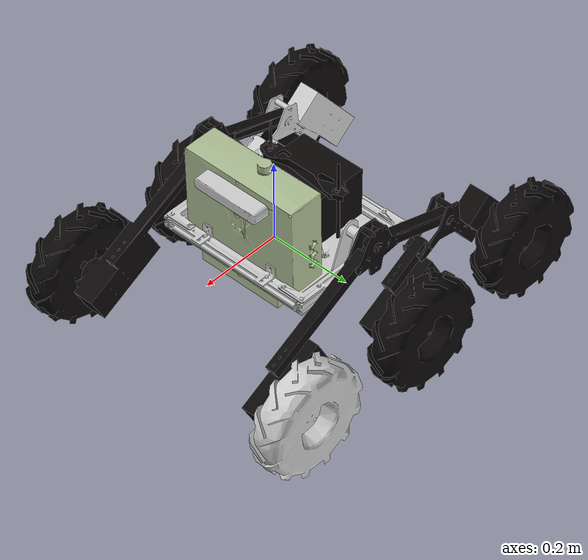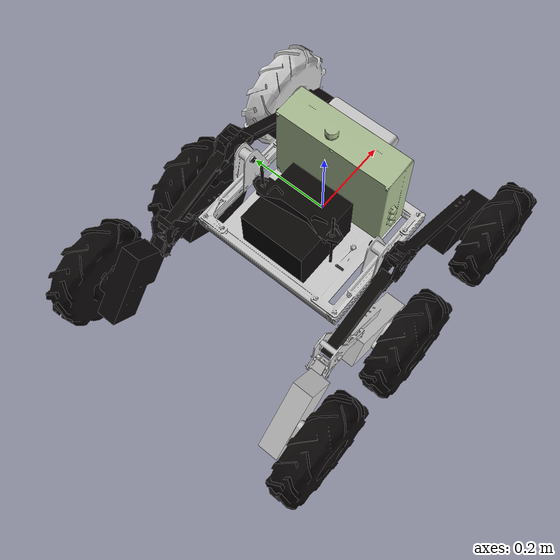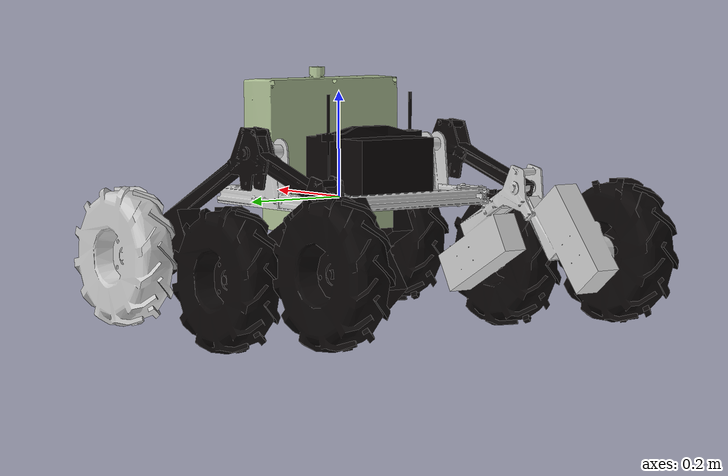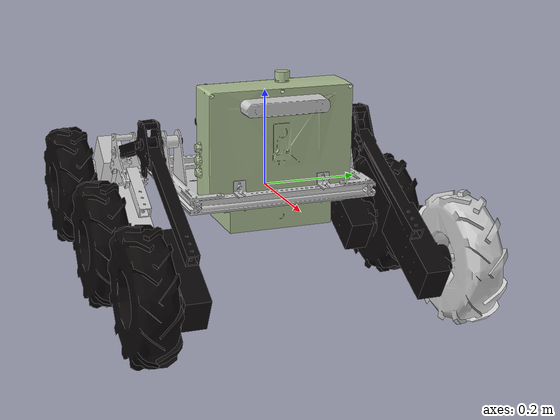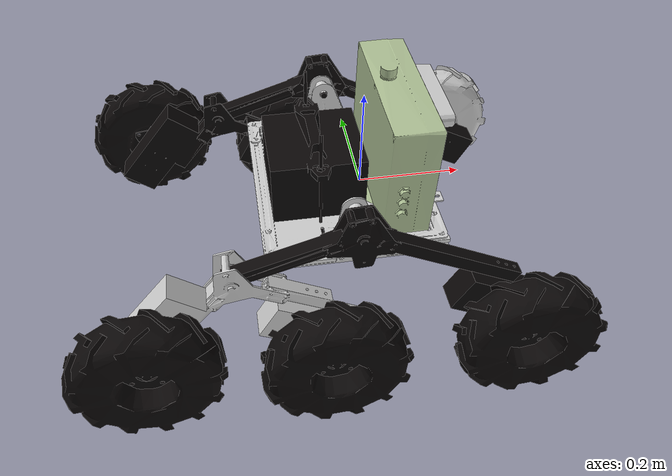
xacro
<?xml version="1.0"?>
<!-- Basic differential drive mobile base -->
<robot xmlns:xacro="http://www.ros.org/wiki/xacro" name="bodenbot">
  <xacro:arg name="prefix" default="" />
  <xacro:arg name="use_mock_hardware" default="true" />
  <xacro:arg name="debug" default="true" />

  <xacro:include filename="$(find bodenbot)/urdf/bodenbot_description.urdf.xacro" />

  <!-- Import Rviz colors -->
  <xacro:include filename="$(find bodenbot)/urdf/bodenbot.materials.xacro" />

  <!-- Import ros2_control description -->
  <xacro:include filename="$(find bodenbot)/ros2_control/bodenbot.ros2_control.xacro" />

  <xacro:bodenbot prefix="$(arg prefix)" />

  <xacro:bodenbot_ros2_control name="bodenbot"
    prefix="$(arg prefix)"
    debug="$(arg debug)"
    use_mock_hardware="$(arg use_mock_hardware)"
    />
</robot>

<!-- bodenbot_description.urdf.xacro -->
<robot xmlns:xacro="http://www.ros.org/wiki/xacro">
<xacro:macro name="bodenbot" params="prefix">
  <joint name="Zed2i_link_joint" type="fixed">
    <origin rpy="0.00000 0.00682 3.14159" xyz="-0.08420 0.00894 0.08299"/>
    <parent link="electronics_link"/>
    <child link="Zed2i_link"/>
  </joint>
  <joint name="base_link_joint" type="fixed">
    <origin rpy="0.00000 0.00000 0.00000" xyz="0.00000 0.00000 -0.23899"/>
    <parent link="main_plate_link"/>
    <child link="base_link"/>
  </joint>
  <joint name="battery_link_joint" type="fixed">
    <origin rpy="0.00000 0.00000 -3.14159" xyz="-0.09286 -0.00214 0.05627"/>
    <parent link="main_plate_link"/>
    <child link="battery_link"/>
  </joint>
  <joint name="electronics_link_joint" type="fixed">
    <origin rpy="0.00000 0.00000 -3.14159" xyz="0.04514 0.00299 0.10698"/>
    <parent link="main_plate_link"/>
    <child link="electronics_link"/>
  </joint>
  <joint name="left_wheel_1_link_joint" type="continuous">
    <limit lower="0.00000" upper="0.00000" effort="1000.00000" velocity="10.00000"/>
    <origin rpy="0.00000 -0.00000 2.05076" xyz="-0.29512 -0.20932 0.09071"/>
    <parent link="suspension_left_main_link"/>
    <child link="left_wheel_1_link"/>
    <axis xyz="0.00000 0.00000 1.00000"/>
  </joint>
  <joint name="left_wheel_2_link_joint" type="continuous">
    <limit lower="0.00000" upper="0.00000" effort="1000.00000" velocity="10.00000"/>
    <origin rpy="0.00000 0.00000 2.34661" xyz="-0.12032 -0.18908 0.02638"/>
    <parent link="suspension_left_sub_link"/>
    <child link="left_wheel_2_link"/>
    <axis xyz="0.00000 0.00000 1.00000"/>
  </joint>
  <joint name="left_wheel_3_link_joint" type="continuous">
    <limit lower="0.00000" upper="0.00000" effort="1000.00000" velocity="10.00000"/>
    <origin rpy="0.00000 0.00000 0.26966" xyz="0.17866 -0.06537 0.02638"/>
    <parent link="suspension_left_sub_link"/>
    <child link="left_wheel_3_link"/>
    <axis xyz="0.00000 0.00000 1.00000"/>
  </joint>
  <joint name="right_wheel_1_link_joint" type="continuous">
    <limit lower="0.00000" upper="0.00000" effort="1000.00000" velocity="10.00000"/>
    <origin rpy="-0.00000 0.00000 -2.34661" xyz="0.12032 -0.18908 0.02638"/>
    <parent link="suspension_right_sub_link"/>
    <child link="right_wheel_1_link"/>
    <axis xyz="0.00000 0.00000 -1.00000"/>
  </joint>
  <joint name="right_wheel_2_link_joint" type="continuous">
    <limit lower="0.00000" upper="0.00000" effort="1000.00000" velocity="10.00000"/>
    <origin rpy="0.00000 -0.00000 2.19125" xyz="-0.17866 -0.06537 0.02638"/>
    <parent link="suspension_right_sub_link"/>
    <child link="right_wheel_2_link"/>
    <axis xyz="0.00000 0.00000 -1.00000"/>
  </joint>
  <joint name="right_wheel_3_link_joint" type="continuous">
    <limit lower="0.00000" upper="0.00000" effort="1000.00000" velocity="10.00000"/>
    <origin rpy="-0.00000 0.00000 -2.05076" xyz="0.29512 -0.20932 0.09071"/>
    <parent link="suspension_right_main_link"/>
    <child link="right_wheel_3_link"/>
    <axis xyz="0.00000 0.00000 -1.00000"/>
  </joint>
  <joint name="sensor_package_link_joint" type="fixed">
    <origin rpy="-3.14159 0.00000 -3.14159" xyz="0.03892 0.00022 -0.02071"/>
    <parent link="main_plate_link"/>
    <child link="sensor_package_link"/>
  </joint>
  <joint name="suspension_left_main_link_joint" type="revolute">
    <limit lower="-0.50000" upper="0.50000" effort="1.50000" velocity="0.01500"/>
    <mimic multiplier="-1.00000" offset="0.00000" joint="suspension_right_main_link_joint"/>
    <origin rpy="1.57080 0.00000 -3.14159" xyz="-0.04578 0.16295 0.09549"/>
    <parent link="main_plate_link"/>
    <child link="suspension_left_main_link"/>
    <axis xyz="0.00000 0.00000 1.00000"/>
  </joint>
  <joint name="suspension_left_sub_link_joint" type="revolute">
    <limit lower="-0.50000" upper="0.50000" effort="5.00000" velocity="0.01500"/>
    <origin rpy="-0.00000 0.00000 -0.26966" xyz="0.22047 -0.07218 0.06434"/>
    <parent link="suspension_left_main_link"/>
    <child link="suspension_left_sub_link"/>
    <axis xyz="0.00000 0.00000 1.00000"/>
  </joint>
  <joint name="suspension_right_main_link_joint" type="revolute">
    <limit lower="-0.50000" upper="0.50000" effort="1.50000" velocity="0.01500"/>
    <origin rpy="1.57080 -0.00000 -0.00000" xyz="-0.04587 -0.16724 0.09582"/>
    <parent link="main_plate_link"/>
    <child link="suspension_right_main_link"/>
    <axis xyz="0.00000 0.00000 1.00000"/>
  </joint>
  <joint name="suspension_right_sub_link_joint" type="revolute">
    <limit lower="-0.50000" upper="0.50000" effort="5.00000" velocity="0.01500"/>
    <origin rpy="-0.00000 0.00000 0.26966" xyz="-0.22047 -0.07218 0.06434"/>
    <parent link="suspension_right_main_link"/>
    <child link="suspension_right_sub_link"/>
    <axis xyz="0.00000 0.00000 1.00000"/>
  </joint>
  <link name="Zed2i_link">
    <inertial>
      <inertia ixx="0.00048" ixy="0.00000" ixz="0.00000" iyy="0.00004" iyz="0.00000" izz="0.00050"/>
      <origin rpy="0.00000 0.00000 0.00000" xyz="0.00378 0.00106 -0.00564"/>
      <mass value="0.20000"/>
    </inertial>
    <visual name="Zed2i_visual">
      <origin rpy="1.57080 -0.00000 3.14159" xyz="-0.00000 -0.00000 -0.00000"/>
      <material name="Glass"/>
      <geometry>
        <mesh filename="package://bodenbot/description/meshes/dae/Zed2i.dae" scale="1.00000 1.00000 1.00000"/>
      </geometry>
    </visual>
  </link>
  <link name="base_link">
    <inertial>
      <inertia ixx="0.00001" ixy="0.00000" ixz="0.00000" iyy="0.00001" iyz="0.00000" izz="0.00001"/>
      <origin rpy="0.00000 0.00000 0.00000" xyz="0.00000 0.00000 0.00000"/>
      <mass value="0.00001"/>
    </inertial>
  </link>
  <link name="battery_link">
    <inertial>
      <inertia ixx="0.04617" ixy="0.00000" ixz="0.00003" iyy="0.04395" iyz="0.00004" izz="0.03884"/>
      <origin rpy="0.00000 0.00000 0.00000" xyz="0.00000 0.00000 0.00144"/>
      <mass value="8.00000"/>
    </inertial>
    <visual name="battery_visual">
      <origin rpy="1.57080 0.00000 0.00000" xyz="0.00000 0.00000 0.00000"/>
      <material name="Rubber"/>
      <geometry>
        <mesh filename="package://bodenbot/description/meshes/dae/battery.dae" scale="1.00000 1.00000 1.00000"/>
      </geometry>
    </visual>
  </link>
  <link name="electronics_link">
    <inertial>
      <inertia ixx="0.00623" ixy="0.00010" ixz="0.00038" iyy="0.00308" iyz="-0.00011" izz="0.00450"/>
      <origin rpy="0.00000 0.00000 0.00000" xyz="-0.01192 0.00225 0.00595"/>
      <mass value="0.50000"/>
    </inertial>
    <visual name="electronics_visual">
      <origin rpy="1.57080 0.00000 0.00000" xyz="-0.00000 0.00000 0.00000"/>
      <material name="Plastic"/>
      <geometry>
        <mesh filename="package://bodenbot/description/meshes/dae/electronics.dae" scale="1.00000 1.00000 1.00000"/>
      </geometry>
    </visual>
  </link>
  <link name="left_wheel_1_link">
    <collision name="left_wheel_1_collision">
      <origin rpy="-0.00000 0.00000 0.00000" xyz="-0.00006 -0.00002 0.06622"/>
      <geometry>
        <cylinder radius="0.13329" length="0.10744"/>
      </geometry>
    </collision>
    <inertial>
      <inertia ixx="0.00162" ixy="0.00000" ixz="0.00000" iyy="0.00267" iyz="0.00000" izz="0.00162"/>
      <origin rpy="0.00000 0.00000 0.00000" xyz="-0.00006 -0.00002 0.06622"/>
      <mass value="0.30000"/>
    </inertial>
    <visual name="left_wheel_1_visual">
      <origin rpy="-0.00000 0.00000 0.00000" xyz="-0.00000 0.00000 0.00000"/>
      <material name="Metal"/>
      <geometry>
        <mesh filename="package://bodenbot/description/meshes/dae/wheel_left.dae" scale="1.00000 1.00000 1.00000"/>
      </geometry>
    </visual>
  </link>
  <link name="left_wheel_2_link">
    <collision name="left_wheel_2_collision">
      <origin rpy="0.00000 0.00000 0.00000" xyz="-0.00006 -0.00002 0.06622"/>
      <geometry>
        <cylinder radius="0.13329" length="0.10744"/>
      </geometry>
    </collision>
    <inertial>
      <inertia ixx="0.00162" ixy="0.00000" ixz="0.00000" iyy="0.00267" iyz="0.00000" izz="0.00162"/>
      <origin rpy="0.00000 0.00000 0.00000" xyz="-0.00006 -0.00002 0.06622"/>
      <mass value="0.30000"/>
    </inertial>
    <visual name="left_wheel_2_visual">
      <origin rpy="0.00000 0.00000 0.00000" xyz="0.00000 -0.00000 -0.00000"/>
      <material name="Rubber"/>
      <geometry>
        <mesh filename="package://bodenbot/description/meshes/dae/wheel_left.dae" scale="1.00000 1.00000 1.00000"/>
      </geometry>
    </visual>
  </link>
  <link name="left_wheel_3_link">
    <collision name="left_wheel_3_collision">
      <origin rpy="-3.14159 0.00000 0.00000" xyz="0.00004 0.00005 0.06622"/>
      <geometry>
        <cylinder radius="0.13329" length="0.10744"/>
      </geometry>
    </collision>
    <inertial>
      <inertia ixx="0.00162" ixy="0.00000" ixz="0.00000" iyy="0.00267" iyz="0.00000" izz="0.00162"/>
      <origin rpy="0.00000 0.00000 0.00000" xyz="0.00004 0.00005 0.06622"/>
      <mass value="0.30000"/>
    </inertial>
    <visual name="left_wheel_3_visual">
      <origin rpy="0.00000 0.00000 0.00000" xyz="0.00000 0.00000 -0.00000"/>
      <material name="Rubber"/>
      <geometry>
        <mesh filename="package://bodenbot/description/meshes/dae/wheel_left.dae" scale="1.00000 1.00000 1.00000"/>
      </geometry>
    </visual>
  </link>
  <link name="main_plate_link">
    <inertial>
      <inertia ixx="0.00100" ixy="0.00000" ixz="0.00000" iyy="0.00100" iyz="0.00000" izz="0.00100"/>
      <origin rpy="0.00000 0.00000 0.00000" xyz="-0.00150 -0.00214 -0.00904"/>
      <mass value="2.00000"/>
    </inertial>
    <visual name="main_plate_visual">
      <origin rpy="1.57080 0.00000 -3.14159" xyz="-0.04078 -0.00214 0.00674"/>
      <material name="Metal"/>
      <geometry>
        <mesh filename="package://bodenbot/description/meshes/dae/main_plate.dae" scale="1.00000 1.00000 1.00000"/>
      </geometry>
    </visual>
  </link>
  <link name="right_wheel_1_link">
    <collision name="right_wheel_1_collision">
      <origin rpy="-3.14159 -0.00000 0.00000" xyz="0.00006 -0.00002 0.06622"/>
      <geometry>
        <cylinder radius="0.13329" length="0.10744"/>
      </geometry>
    </collision>
    <inertial>
      <inertia ixx="0.00162" ixy="0.00000" ixz="0.00000" iyy="0.00267" iyz="0.00000" izz="0.00162"/>
      <origin rpy="0.00000 0.00000 0.00000" xyz="0.00006 -0.00002 0.06622"/>
      <mass value="0.30000"/>
    </inertial>
    <visual name="right_wheel_1_visual">
      <origin rpy="-3.14159 -0.00000 0.00000" xyz="-0.00000 -0.00000 -0.00000"/>
      <material name="Rubber"/>
      <geometry>
        <mesh filename="package://bodenbot/description/meshes/dae/wheel_right.dae" scale="1.00000 1.00000 1.00000"/>
      </geometry>
    </visual>
  </link>
  <link name="right_wheel_2_link">
    <collision name="right_wheel_2_collision">
      <origin rpy="3.14159 0.00000 0.00000" xyz="0.00006 -0.00002 0.06622"/>
      <geometry>
        <cylinder radius="0.13329" length="0.10744"/>
      </geometry>
    </collision>
    <inertial>
      <inertia ixx="0.00162" ixy="0.00000" ixz="0.00000" iyy="0.00267" iyz="0.00000" izz="0.00162"/>
      <origin rpy="0.00000 0.00000 0.00000" xyz="0.00006 -0.00002 0.06622"/>
      <mass value="0.30000"/>
    </inertial>
    <visual name="right_wheel_2_visual">
      <origin rpy="3.14159 0.00000 0.00000" xyz="0.00000 0.00000 -0.00000"/>
      <material name="Rubber"/>
      <geometry>
        <mesh filename="package://bodenbot/description/meshes/dae/wheel_right.dae" scale="1.00000 1.00000 1.00000"/>
      </geometry>
    </visual>
  </link>
  <link name="right_wheel_3_link">
    <collision name="right_wheel_3_collision">
      <origin rpy="-3.14159 -0.00000 0.00000" xyz="0.00001 -0.00000 0.06622"/>
      <geometry>
        <cylinder radius="0.13335" length="0.10744"/>
      </geometry>
    </collision>
    <inertial>
      <inertia ixx="0.00162" ixy="0.00000" ixz="0.00000" iyy="0.00267" iyz="0.00000" izz="0.00162"/>
      <origin rpy="0.00000 0.00000 0.00000" xyz="0.00001 -0.00000 0.06622"/>
      <mass value="0.30000"/>
    </inertial>
    <visual name="right_wheel_3_visual">
      <origin rpy="-3.14159 -0.00000 0.00000" xyz="0.00000 0.00000 0.00000"/>
      <material name="Rubber"/>
      <geometry>
        <mesh filename="package://bodenbot/description/meshes/dae/wheel_right.dae" scale="1.00000 1.00000 1.00000"/>
      </geometry>
    </visual>
  </link>
  <link name="sensor_package_link">
    <inertial>
      <inertia ixx="0.00129" ixy="0.00000" ixz="0.00001" iyy="0.00052" iyz="0.00001" izz="0.00154"/>
      <origin rpy="0.00000 0.00000 0.00000" xyz="0.00247 0.00036 0.01919"/>
      <mass value="0.30000"/>
    </inertial>
    <visual name="sensor_package_visual">
      <origin rpy="-1.57080 0.00000 0.00000" xyz="0.00000 0.00000 0.00000"/>
      <material name="Plastic"/>
      <geometry>
        <mesh filename="package://bodenbot/description/meshes/dae/sensor_package.dae" scale="1.00000 1.00000 1.00000"/>
      </geometry>
    </visual>
  </link>
  <link name="suspension_left_main_link">
    <inertial>
      <inertia ixx="0.03839" ixy="-0.00521" ixz="-0.05264" iyy="0.11630" iyz="-0.00362" izz="0.07964"/>
      <origin rpy="0.00000 0.00000 0.00000" xyz="-0.14394 -0.11660 0.07202"/>
      <mass value="2.00000"/>
    </inertial>
    <visual name="suspension_left_main_visual">
      <origin rpy="3.14159 0.00000 0.00000" xyz="0.00000 0.00000 0.00000"/>
      <material name="Rubber"/>
      <geometry>
        <mesh filename="package://bodenbot/description/meshes/dae/suspension_left.dae" scale="1.00000 1.00000 1.00000"/>
      </geometry>
    </visual>
  </link>
  <link name="suspension_left_sub_link">
    <inertial>
      <inertia ixx="0.01321" ixy="0.00058" ixz="-0.00162" iyy="0.04851" iyz="-0.00201" izz="0.03744"/>
      <origin rpy="0.00000 0.00000 0.00000" xyz="0.01868 -0.09125 0.01201"/>
      <mass value="2.50000"/>
    </inertial>
    <visual name="suspension_left_sub_visual">
      <origin rpy="3.14159 0.00000 -0.00000" xyz="-0.00000 -0.00000 0.00000"/>
      <material name="Rubber"/>
      <geometry>
        <mesh filename="package://bodenbot/description/meshes/dae/suspension_left_sub.dae" scale="1.00000 1.00000 1.00000"/>
      </geometry>
    </visual>
  </link>
  <link name="suspension_right_main_link">
    <inertial>
      <inertia ixx="0.03839" ixy="0.00521" ixz="-0.05264" iyy="0.11630" iyz="0.00362" izz="0.07964"/>
      <origin rpy="0.00000 0.00000 0.00000" xyz="0.14394 -0.11660 0.07202"/>
      <mass value="2.00000"/>
    </inertial>
    <visual name="suspension_right_main_visual">
      <origin rpy="0.00000 0.00000 -0.00000" xyz="0.00000 0.00000 0.00000"/>
      <material name="Rubber"/>
      <geometry>
        <mesh filename="package://bodenbot/description/meshes/dae/suspension_right.dae" scale="1.00000 1.00000 1.00000"/>
      </geometry>
    </visual>
  </link>
  <link name="suspension_right_sub_link">
    <inertial>
      <inertia ixx="0.01321" ixy="-0.00058" ixz="-0.00162" iyy="0.04851" iyz="0.00201" izz="0.03744"/>
      <origin rpy="0.00000 0.00000 0.00000" xyz="-0.01868 -0.09125 0.01201"/>
      <mass value="2.50000"/>
    </inertial>
    <visual name="suspension_right_sub_visual">
      <origin rpy="-0.00000 0.00000 0.00000" xyz="0.00000 0.00000 -0.00000"/>
      <material name="Metal"/>
      <geometry>
        <mesh filename="package://bodenbot/description/meshes/dae/suspension_right_sub.dae" scale="1.00000 1.00000 1.00000"/>
      </geometry>
    </visual>
  </link>
</xacro:macro>
</robot>

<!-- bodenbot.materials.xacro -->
<!--
Copied from ROS1 example:
https://github.com/ros-simulation/gazebo_ros_demos/blob/kinetic-devel/rrbot_description/urdf/materials.xacro
-->
<robot>

  <material name="black">
    <color rgba="0.0 0.0 0.0 1.0"/>
  </material>

  <material name="blue">
    <color rgba="0.0 0.0 0.8 1.0"/>
  </material>

  <material name="green">
    <color rgba="0.0 0.8 0.0 1.0"/>
  </material>

  <material name="grey">
    <color rgba="0.2 0.2 0.2 1.0"/>
  </material>

  <material name="orange">
    <color rgba="${255/255} ${108/255} ${10/255} 1.0"/>
  </material>

  <material name="brown">
    <color rgba="${222/255} ${207/255} ${195/255} 1.0"/>
  </material>

  <material name="red">
    <color rgba="0.8 0.0 0.0 1.0"/>
  </material>

  <material name="white">
    <color rgba="1.0 1.0 1.0 1.0"/>
  </material>

  <material name="Glass">
    <color rgba="0.80000 0.80000 0.80000 1.00000"/>
  </material>
  <material name="Metal">
    <color rgba="0.80000 0.80000 0.80000 1.00000"/>
  </material>
  <material name="Plastic">
    <color rgba="0.67843 0.74902 0.58039 1.00000"/>
  </material>
  <material name="Rubber">
    <color rgba="0.03922 0.02745 0.02745 1.00000"/>
  </material>
</robot>
